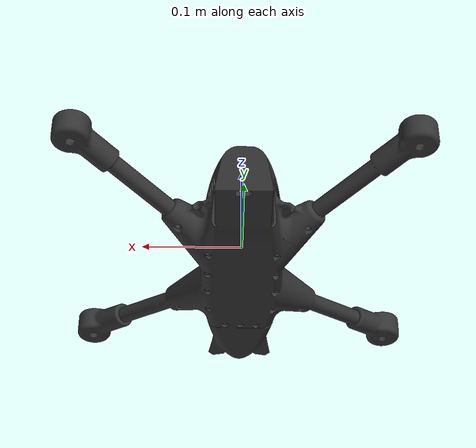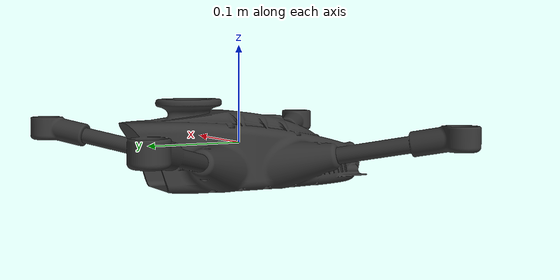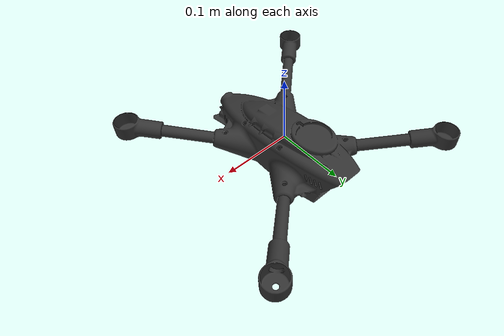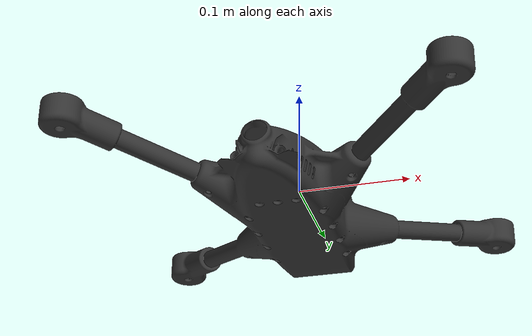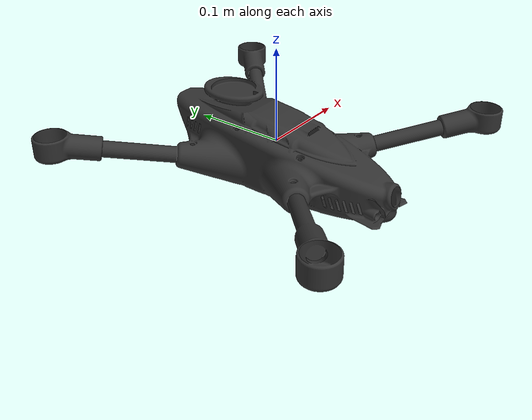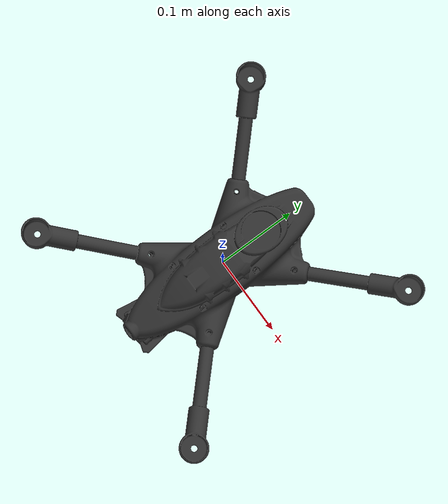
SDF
<?xml version="1.0"?>
<sdf version="1.9">
  <model name="drone">
    <!-- kinematic: moved by the flight node, not by physics -->
    <static>false</static>
    <link name="body">
      <gravity>false</gravity>
      <kinematic>true</kinematic>
      <inertial>
        <mass>0.8</mass>
        <inertia><ixx>0.01</ixx><iyy>0.01</iyy><izz>0.02</izz>
                 <ixy>0</ixy><ixz>0</ixz><iyz>0</iyz></inertia>
      </inertial>
      <visual name="visual">
        <geometry>
          <mesh><uri>package://drone_sim/meshes/drone.stl</uri></mesh>
        </geometry>
        <material>
          <ambient>0.15 0.15 0.15 1</ambient>
          <diffuse>0.2 0.2 0.2 1</diffuse>
        </material>
      </visual>
      <collision name="collision">
        <geometry><box><size>0.35 0.35 0.10</size></box></geometry>
      </collision>
    </link>

    <plugin filename="gz-sim-pose-publisher-system" name="gz::sim::systems::PosePublisher">
      <publish_link_pose>false</publish_link_pose>
      <publish_model_pose>true</publish_model_pose>
      <publish_nested_model_pose>false</publish_nested_model_pose>
      <publish_collision_pose>false</publish_collision_pose>
      <publish_visual_pose>false</publish_visual_pose>
      <use_pose_vector_msg>false</use_pose_vector_msg>
      <static_publisher>false</static_publisher>
      <!-- 물리 반복(1 kHz)마다 내보내지 않도록 발행 주기를 제한한다.
           판정 시각 해상도로는 30 Hz 로 충분하다. -->
      <update_frequency>30</update_frequency>
    </plugin>
  </model>
</sdf>
